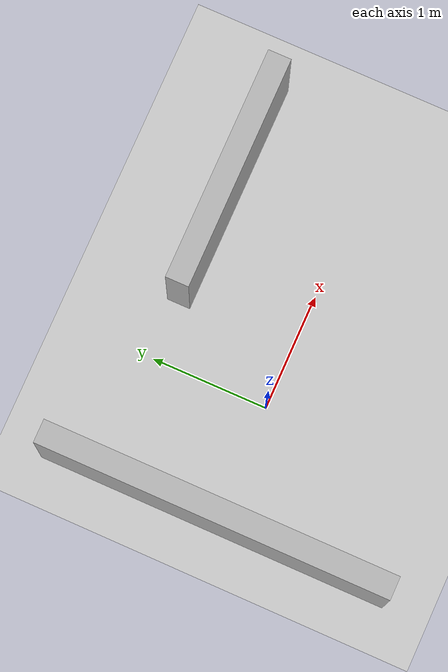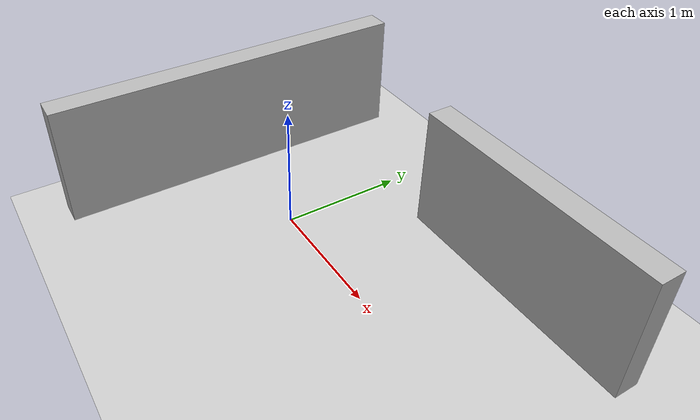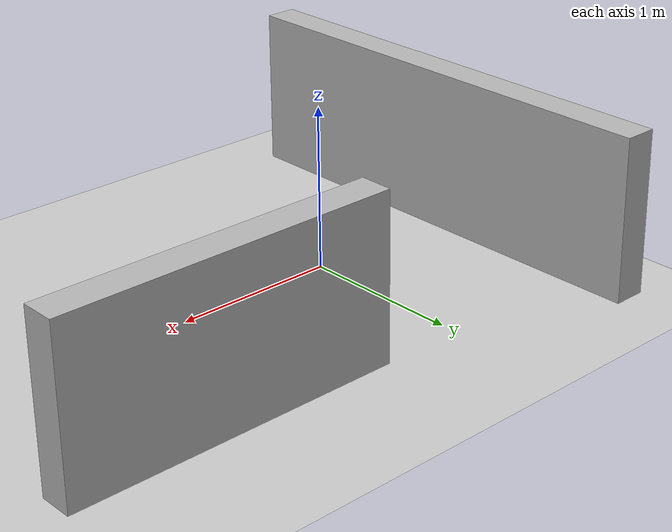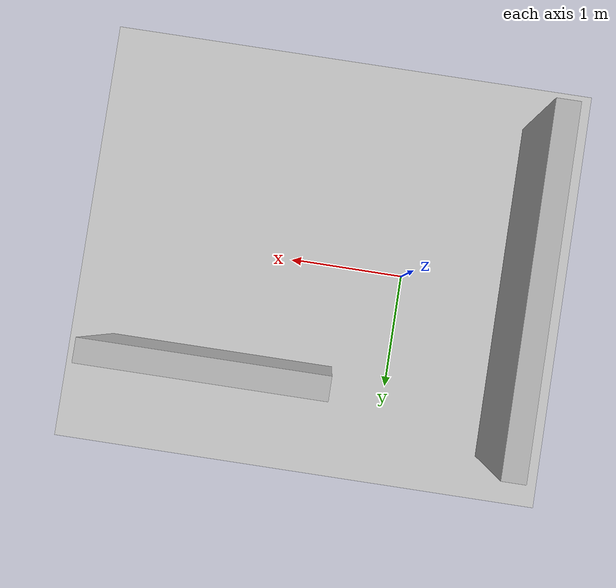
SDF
<?xml version="1.0"?>
<sdf version="1.6">
<world name="delivery_world">
  <include>
    <uri>model://ground_plane</uri>
  </include>
  <include>
    <uri>model://sun</uri>
  </include>

  <!-- 障碍物墙体 -->
  <model name="wall1">
    <static>true</static>
    <link name="link">
      <collision name="collision">
        <geometry><box><size>2 0.2 1</size></box></geometry>
      </collision>
      <visual name="visual">
        <geometry><box><size>2 0.2 1</size></box></geometry>
      </visual>
      <pose>1.5 1.0 0.5 0 0 0</pose>
    </link>
  </model>

  <model name="wall2">
    <static>true</static>
    <link name="link">
      <collision name="collision">
        <geometry><box><size>0.2 3 1</size></box></geometry>
      </collision>
      <visual name="visual">
        <geometry><box><size>0.2 3 1</size></box></geometry>
      </visual>
      <pose>-1.0 0 0.5 0 0 0</pose>
    </link>
  </model>
</world>
</sdf>
